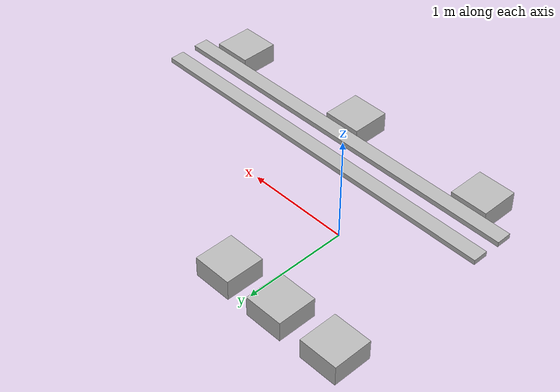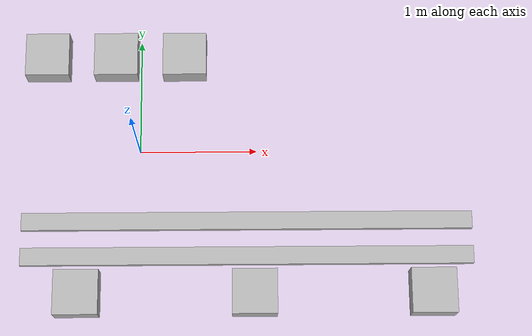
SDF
<?xml version='1.0'?>
<sdf version='1.6'>
  <model name='box_restaurant_routes'>
    <link name='link_1_box_restaurant_routes'>
         <visual name='visual_box_restaurant_routes'>
        <pose frame=''>0 0 0 0 -0 0</pose>
        <geometry>
          <mesh>
            <uri>model://box_restaurant_routes/meshes/box_restaurant_routes.stl</uri>
            <scale>0.1 0.1 0.1</scale>
          </mesh>
        </geometry>
      </visual>
    </link>

    <static>1</static>
    <allow_auto_disable>1</allow_auto_disable>
  </model>
</sdf>
